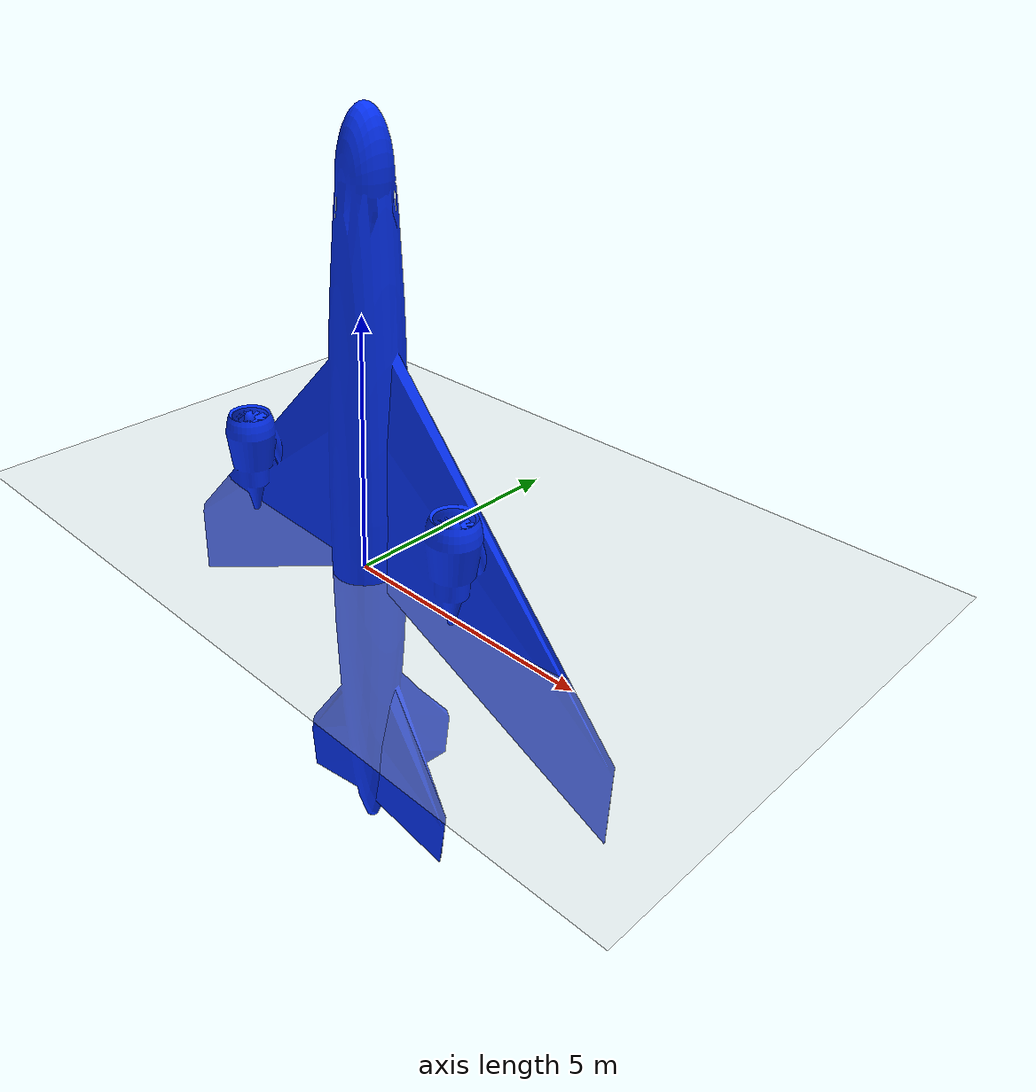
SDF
<?xml version="1.0" ?>
<sdf version="1.9">
  <world name="mundo_avion">
    <gravity>0 0 -9.8</gravity>
    <magnetic_field>6e-06 2.3e-05 -4.2e-05</magnetic_field>
    <atmosphere type="adiabatic"/>

    <physics type="ode">
      <max_step_size>0.001</max_step_size>
      <real_time_factor>1</real_time_factor>
      <real_time_update_rate>1000</real_time_update_rate>
    </physics>

    <!-- Escena -->
    <scene>
      <ambient>0.4 0.4 0.4 1</ambient>
      <background>0.7 0.7 0.7 1</background>
      <shadows>true</shadows>
    </scene>

    <!-- Plano de tierra -->
    <model name="ground_plane">
      <static>true</static>
      <link name="link">
        <collision name="collision">
          <geometry>
            <plane>
              <normal>0 0 1</normal>
              <size>1 1</size>
            </plane>
          </geometry>
        </collision>
        <visual name="visual">
          <geometry>
            <plane>
              <normal>0 0 1</normal>
              <size>100 100</size>
            </plane>
          </geometry>
          <material>
            <ambient>0.8 0.8 0.8 1</ambient>
            <diffuse>0.8 0.8 0.8 1</diffuse>
          </material>
        </visual>
      </link>
    </model>

    <!-- Modelo del avión que sigue ángulos del MPU6050 -->
    <model name="avion">
      <static>true</static>  <!-- Static para control total de la pose -->
      <pose>0 0 1 0 0 0</pose>  <!-- Pose inicial nivelada -->

      <link name="base_link">
        <inertial>
          <mass>1.0</mass>
          <inertia>
            <ixx>0.1</ixx>
            <iyy>0.1</iyy>
            <izz>0.1</izz>
            <ixy>0.0</ixy>
            <ixz>0.0</ixz>
            <iyz>0.0</iyz>
          </inertia>
        </inertial>

        <visual name="visual">
          <geometry>
            <mesh>
              <uri>file:///home/yoel/avion_ws/src/avion/models/avion.dae</uri>
              <scale>1000 1000 1000</scale>
            </mesh>
          </geometry>
        </visual>

        <collision name="collision">
          <geometry>
            <box>
              <size>30 30 3</size>
            </box>
          </geometry>
        </collision>
      </link>

      <!-- Plugin para publicar la pose actual -->
      <plugin name="SetPoseTopicPlugin" filename="libSetPoseTopicPlugin.so"/>
    </model>

    <!-- Luz del sol -->
    <light name="sun" type="directional">
      <pose>0 0 10 0 0 0</pose>
      <cast_shadows>true</cast_shadows>
      <intensity>1</intensity>
      <direction>-0.5 0.1 -0.9</direction>
      <diffuse>0.8 0.8 0.8 1</diffuse>
      <specular>0.2 0.2 0.2 1</specular>
      <attenuation>
        <range>1000</range>
        <linear>0.01</linear>
        <constant>0.9</constant>
        <quadratic>0.001</quadratic>
      </attenuation>
    </light>
  </world>
</sdf>
